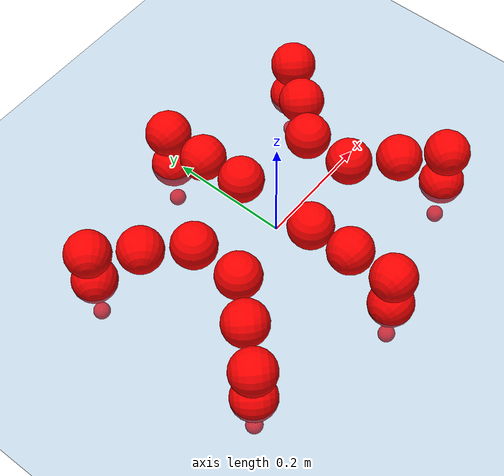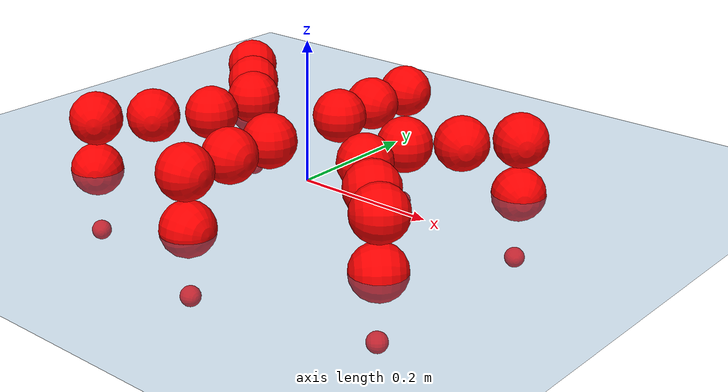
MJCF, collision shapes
<mujoco model="Golem">
  <compiler angle="radian" assetdir="assets" balanceinertia="true" inertiafromgeom="false"/>

  <option timestep="0.005" density="1.2" viscosity="2e-05"/>

  <size nkey="1"/>

  <visual>
    <quality shadowsize="8192"/>
    <map shadowclip="0.5"/>
  </visual>

  <default>
    <default class="/">
      <joint armature="0.01" damping="0.01" frictionloss="0.01"/>
      <geom contype="0" conaffinity="0" group="1" solref="-1000 -80"/>
      <site size="0.01 0.005 0.005" group="5"/>
      <general forcelimited="true" biastype="affine" gainprm="25" biasprm="0 -25 -0.5"/>
      <default class="visual">
        <geom type="mesh" group="2"/>
      </default>
      <default class="collision">
        <geom group="3"/>
      </default>
      <default class="foot">
        <geom size="0.01 0 0" condim="6" group="4" priority="1" solimp="0.015 1 0.01"/>
      </default>
      <default class="reward_collision_sphere">
        <geom group="5" rgba="1 0 0 1"/>
      </default>
    </default>
  </default>

  <asset>
    <texture type="skybox" colorspace="auto" name="//unnamed_texture_0" builtin="gradient" rgb1="0.95 0.95 0.95" rgb2="0.95 0.95 0.95" width="100" height="600"/>
    <texture type="2d" colorspace="auto" name="texplane" builtin="checker" rgb1="0.345 0.575 0.748" rgb2="0.345 0.575 0.748" markrgb="1 1 1" width="512" height="512"/>
    <material name="MatPlane" class="/" texture="texplane" texuniform="true" texrepeat="2 2" specular="0.9"/>
    <mesh name="body" class="/" file="body.stl" scale="0.001 0.001 0.001"/>
    <mesh name="coxa" class="/" file="coxa.stl" scale="0.001 0.001 0.001"/>
    <mesh name="femur" class="/" file="femur.stl" scale="0.001 0.001 0.001"/>
    <mesh name="tibia" class="/" file="tibia.stl" scale="0.001 0.001 0.001"/>
    <mesh name="tarsus" class="/" file="tarsus.stl" scale="0.001 0.001 0.001"/>
  </asset>

  <worldbody>
    <geom name="floor" class="/" size="100 100 0.125" type="plane" group="0" material="MatPlane"/>
    <light name="toplight_shadow" class="/" pos="0 0 5" dir="0.0990148 0.0990148 -0.990148" type="directional" ambient="0.04 0.04 0.04" diffuse="0.55 0.55 0.55" specular="0.12 0.12 0.12"/>
    <light name="toplight_fill" class="/" pos="0 0 5" dir="0.0990148 0.0990148 -0.990148" type="directional" castshadow="false" ambient="0.04 0.04 0.04" diffuse="0.3 0.3 0.3" specular="0.08 0.08 0.08"/>
    <body name="trunk" pos="-0.00264673 0.000307457 -0.00101347" quat="1 -0.000263718 -0.000446572 -0.000379455">
      <inertial pos="0.000472132 0.000404266 -0.000725288" quat="0.999901 0.00621159 0.00277642 0.0123194" mass="2.97975" diaginertia="0.00528199 0.00232329 0.0231812"/>
      <joint name="//unnamed_joint_0" type="free"/>
      <geom name="//unnamed_geom_1" class="/" pos="0 0 0.0759461" quat="1 0 0 0" type="mesh" rgba="0.9 0.9 0.9 1" mesh="body"/>
      <site name="imu" class="/" pos="0.115768 0.0109798 0.105046" size="0.00938355"/>
      <camera name="track" class="/" pos="0 -1.4925 0" quat="0.707107 0.707107 0 0" mode="trackcom"/>
      <camera name="ego_camera" class="/" pos="0.11468 0 0.118666" quat="-0.5 -0.5 0.5 0.5"/>
      <body name="coxa_RR" pos="-0.15863 -0.0600702 0.0780909" quat="0.382609 0.000268677 0.000954928 -0.92391">
        <inertial pos="0.00282506 0.00256301 0.00283477" quat="0.999997 0.00110856 0.00115679 -0.00169866" mass="0.170636" diaginertia="0.0054362 0.00242267 0.0235448"/>
        <joint name="coxa_joint_RR" class="/" pos="0 0 0" axis="-0.00116072 -0.000764852 -0.999999" range="-3.13558 3.12806" armature="0.00973293" damping="0.016011" frictionloss="0.00913856"/>
        <geom name="//unnamed_geom_2" class="/" type="mesh" rgba="0.2 0.2 0.2 1" mesh="coxa"/>
        <geom name="//unnamed_geom_3" class="reward_collision_sphere" size="0.0375342" pos="-0.0264646 0 0"/>
        <body name="femur_RR" pos="0.0550701 0.00216997 -0.00136383" quat="0.500039 -0.49938 0.501294 0.499285">
          <inertial pos="0.00169322 0.00229992 0.000222777" quat="0.99996 -0.00676956 0.0018312 -0.00562839" mass="0.162203" diaginertia="0.00531058 0.00229249 0.0231995"/>
          <joint name="femur_joint_RR" class="/" pos="0 0 0" axis="0.00156308 0.00117183 -0.999998" stiffness="0.00984899" range="-3.08271 3.08236" armature="0.00946176" damping="0.0225336" frictionloss="0.0105193"/>
          <geom name="//unnamed_geom_4" class="/" type="mesh" rgba="0.9 0.9 0.9 1" mesh="femur"/>
          <geom name="//unnamed_geom_5" class="reward_collision_sphere" size="0.0375342"/>
          <body name="tibia_RR" pos="0.00135781 -0.0794611 0.00340743" quat="-0.000367934 0.999999 -0.00069706 -0.00124435">
            <inertial pos="-0.0026411 -0.000837821 -0.00105526" quat="0.999923 0.0104536 -0.00593357 -0.00296077" mass="0.166152" diaginertia="0.00549626 0.00234239 0.024251"/>
            <joint name="tibia_joint_RR" class="/" pos="0 0 0" axis="-0.00955936 0.00710254 0.999929" stiffness="0.009187" range="-3.1856 3.14856" armature="0.00916157" damping="0.00264963" frictionloss="0.00919126"/>
            <geom name="//unnamed_geom_6" class="/" type="mesh" rgba="0.2 0.2 0.2 1" mesh="tibia"/>
            <geom name="//unnamed_geom_7" class="reward_collision_sphere" size="0.0375342"/>
            <body name="tarsus_RR" pos="0.0761175 0.00248937 -0.000502875" quat="0.999999 -0.000180994 -0.00133426 4.34546e-05">
              <inertial pos="0.0517006 0.00133798 -0.00225858" quat="0.499683 0.500136 0.501033 0.499146" mass="0.168767" diaginertia="0.0054332 0.0023887 0.0236781"/>
              <joint name="tarsus_joint_RR" class="/" pos="0 0 0" axis="0.000289383 0.0109546 0.99994" range="-3.1329 3.13708" armature="0.00914141" damping="0.0364449" frictionloss="0.00825433"/>
              <geom name="//unnamed_geom_8" class="/" type="mesh" rgba="0.9 0.9 0.9 1" mesh="tarsus"/>
              <geom name="foot_1" class="foot" size="0.00927683" pos="0.0988013 0 0" quat="0 -0.707107 0 0.707107"/>
              <geom name="//unnamed_geom_10" class="reward_collision_sphere" size="0.0375342"/>
              <geom name="//unnamed_geom_11" class="reward_collision_sphere" size="0.0140753" pos="0.0948316 0 0"/>
              <site name="foot_1" class="foot" pos="0.0988013 0 0" quat="0 -0.707107 0 0.707107" size="0.00938355"/>
            </body>
          </body>
        </body>
      </body>
      <body name="coxa_RM" pos="-0.00177866 -0.0972986 0.0785759" quat="0.706729 0.000686826 -0.000186108 -0.707484">
        <inertial pos="-0.00173897 -0.000923488 -0.000399939" quat="0.999998 0.00200318 -0.000754135 0.000417316" mass="0.169504" diaginertia="0.00526771 0.0024397 0.0237853"/>
        <joint name="coxa_joint_RM" class="/" pos="0 0 0" axis="-0.00367079 0.000148122 -0.999993" range="-3.09032 3.12748" armature="0.0107152" damping="0.00898284" frictionloss="0.00951794"/>
        <geom name="//unnamed_geom_12" class="/" type="mesh" rgba="0.2 0.2 0.2 1" mesh="coxa"/>
        <geom name="//unnamed_geom_13" class="reward_collision_sphere" size="0.0375342" pos="-0.0264646 0 0"/>
        <body name="femur_RM" pos="0.0489772 0.00066849 0.00132349" quat="0.500961 -0.500478 0.499413 0.499146">
          <inertial pos="-0.000759079 -0.00299188 0.00217713" quat="0.999989 0.000319309 -0.00410977 0.00210963" mass="0.169613" diaginertia="0.00513505 0.00227375 0.0231556"/>
          <joint name="femur_joint_RM" class="/" pos="0 0 0" axis="0.00166747 -0.000909505 -0.999998" stiffness="0.000999576" range="-3.15466 3.11373" armature="0.00875266" damping="0.0176363" frictionloss="0.00935807"/>
          <geom name="//unnamed_geom_14" class="/" type="mesh" rgba="0.9 0.9 0.9 1" mesh="femur"/>
          <geom name="//unnamed_geom_15" class="reward_collision_sphere" size="0.0375342"/>
          <body name="tibia_RM" pos="-0.00133562 -0.0794868 0.000989988" quat="-0.000102745 1 -9.75013e-05 -0.000241461">
            <inertial pos="-0.00275205 -0.000450147 -0.00110326" quat="0.99992 0.00138593 0.00881741 0.00901573" mass="0.166308" diaginertia="0.0054541 0.00228844 0.0235942"/>
            <joint name="tibia_joint_RM" class="/" pos="0 0 0" axis="-0.00537821 0.00506213 0.999973" range="-3.13894 3.14226" armature="0.00959635" damping="0" frictionloss="0.00883594"/>
            <geom name="//unnamed_geom_16" class="/" type="mesh" rgba="0.2 0.2 0.2 1" mesh="tibia"/>
            <geom name="//unnamed_geom_17" class="reward_collision_sphere" size="0.0375342"/>
            <body name="tarsus_RM" pos="0.0764045 0.000333648 -0.00221039" quat="1 -0.00026669 0.000780166 -8.55535e-05">
              <inertial pos="0.0532561 -0.000719263 2.57562e-05" quat="0.494586 0.495561 0.504038 0.505717" mass="0.163919" diaginertia="0.00540927 0.00229512 0.0250143"/>
              <joint name="tarsus_joint_RM" class="/" pos="0 0 0" axis="0.00827381 0.00751719 0.999938" range="-3.19425 3.15204" armature="0.00797327" damping="0.00804509" frictionloss="0.00907823"/>
              <geom name="//unnamed_geom_18" class="/" type="mesh" rgba="0.9 0.9 0.9 1" mesh="tarsus"/>
              <geom name="foot_2" class="foot" size="0.00993032" pos="0.0988013 0 0" quat="0 -0.707107 0 0.707107"/>
              <geom name="//unnamed_geom_20" class="reward_collision_sphere" size="0.0375342"/>
              <geom name="//unnamed_geom_21" class="reward_collision_sphere" size="0.0140753" pos="0.0948316 0 0"/>
              <site name="foot_2" class="foot" pos="0.0988013 0 0" quat="0 -0.707107 0 0.707107" size="0.00938355"/>
            </body>
          </body>
        </body>
      </body>
      <body name="coxa_RF" pos="0.155594 -0.059827 0.0760735" quat="0.924064 1.45024e-05 0.00073267 -0.382238">
        <inertial pos="0.0016368 0.00143374 6.99202e-05" quat="0.999993 0.00304791 0.00167228 0.00138564" mass="0.166004" diaginertia="0.00532315 0.00224647 0.0235787"/>
        <joint name="coxa_joint_RF" class="/" pos="0 0 0" axis="-0.0148624 0.00902614 -0.999849" stiffness="0.00764483" range="-3.08481 3.11072" armature="0.0082465" damping="0.0298864" frictionloss="0.00909542"/>
        <geom name="//unnamed_geom_22" class="/" type="mesh" rgba="0.2 0.2 0.2 1" mesh="coxa"/>
        <geom name="//unnamed_geom_23" class="reward_collision_sphere" size="0.0375342" pos="-0.0264646 0 0"/>
        <body name="femur_RF" pos="0.0550778 0.00020424 -0.00237912" quat="0.500129 -0.499536 0.499661 0.500673">
          <inertial pos="-0.000282972 -0.00299428 0.00101816" quat="0.999944 0.00721253 0.00747678 -0.0019043" mass="0.168757" diaginertia="0.00526104 0.00228505 0.022799"/>
          <joint name="femur_joint_RF" class="/" pos="0 0 0" axis="0.00357385 -0.000402996 -0.999994" range="-3.12292 3.08104" armature="0.0097464" damping="0.00466137" frictionloss="0.0105762"/>
          <geom name="//unnamed_geom_24" class="/" type="mesh" rgba="0.9 0.9 0.9 1" mesh="femur"/>
          <geom name="//unnamed_geom_25" class="reward_collision_sphere" size="0.0375342"/>
          <body name="tibia_RF" pos="-0.00188539 -0.0779903 4.04376e-05" quat="0.000434803 0.999999 0.000258983 0.00118053">
            <inertial pos="0.000886441 0.000230221 0.00022978" quat="0.999925 -0.0108558 -0.002957 -0.00477296" mass="0.159512" diaginertia="0.00516823 0.00223487 0.0229483"/>
            <joint name="tibia_joint_RF" class="/" pos="0 0 0" axis="-0.000542082 0.000361356 1" range="-3.13493 3.16778" armature="0.00915007" damping="0" frictionloss="0.0103255"/>
            <geom name="//unnamed_geom_26" class="/" type="mesh" rgba="0.2 0.2 0.2 1" mesh="tibia"/>
            <geom name="//unnamed_geom_27" class="reward_collision_sphere" size="0.0375342"/>
            <body name="tarsus_RF" pos="0.0763141 -0.000471711 -0.000104101" quat="1 0.000123126 6.4748e-05 0.000366517">
              <inertial pos="0.052539 -4.44014e-05 -0.000792602" quat="0.489163 0.498921 0.503587 0.508132" mass="0.15949" diaginertia="0.005176 0.00226147 0.0221615"/>
              <joint name="tarsus_joint_RF" class="/" pos="0 0 0" axis="-0.00908419 -0.00191458 0.999957" stiffness="0.00087098" range="-3.13653 3.16054" armature="0.00924425" damping="0.00697083" frictionloss="0.0107137"/>
              <geom name="//unnamed_geom_28" class="/" type="mesh" rgba="0.9 0.9 0.9 1" mesh="tarsus"/>
              <geom name="foot_3" class="foot" size="0.0100149" pos="0.0988013 0 0" quat="0 -0.707107 0 0.707107"/>
              <geom name="//unnamed_geom_30" class="reward_collision_sphere" size="0.0375342"/>
              <geom name="//unnamed_geom_31" class="reward_collision_sphere" size="0.0140753" pos="0.0948316 0 0"/>
              <site name="foot_3" class="foot" pos="0.0988013 0 0" quat="0 -0.707107 0 0.707107" size="0.00938355"/>
            </body>
          </body>
        </body>
      </body>
      <body name="coxa_LR" pos="-0.159992 0.0639807 0.0788138" quat="0.382021 -0.000292341 0.000351962 0.924153">
        <inertial pos="-3.15434e-05 0.000587715 0.00233614" quat="0.999997 -7.80888e-05 0.0025549 -0.000390629" mass="0.158524" diaginertia="0.00516224 0.00228326 0.0231281"/>
        <joint name="coxa_joint_LR" class="/" pos="0 0 0" axis="-0.00924517 -0.005629 -0.999941" range="-3.0942 3.13544" armature="0.00814706" damping="0.0208393" frictionloss="0.00929849"/>
        <geom name="//unnamed_geom_32" class="/" type="mesh" rgba="0.2 0.2 0.2 1" mesh="coxa"/>
        <geom name="//unnamed_geom_33" class="reward_collision_sphere" size="0.0375342" pos="-0.0264646 0 0"/>
        <body name="femur_LR" pos="0.0545936 -0.00154437 -0.000738598" quat="0.500683 -0.499697 0.499091 0.500527">
          <inertial pos="-6.2388e-05 0.000499918 0.00255945" quat="0.999927 -0.0119333 -0.00147154 -0.00143175" mass="0.169503" diaginertia="0.00552217 0.00223139 0.0243473"/>
          <joint name="femur_joint_LR" class="/" pos="0 0 0" axis="-0.00104449 0.00133998 0.999999" range="-3.17499 3.17546" armature="0.00927889" damping="0.00134092" frictionloss="0.00862616"/>
          <geom name="//unnamed_geom_34" class="/" type="mesh" rgba="0.9 0.9 0.9 1" mesh="femur"/>
          <geom name="//unnamed_geom_35" class="reward_collision_sphere" size="0.0375342"/>
          <body name="tibia_LR" pos="-0.00128884 -0.0797373 -0.000825579" quat="7.01176e-05 1 0.000614815 0.000220194">
            <inertial pos="-0.000691645 -0.00165696 -0.00140732" quat="0.999999 -0.00073809 -0.000615592 -0.00122447" mass="0.165451" diaginertia="0.00535167 0.0023829 0.0228027"/>
            <joint name="tibia_joint_LR" class="/" pos="0 0 0" axis="3.1782e-05 -0.000637476 -1" range="-3.11001 3.18813" armature="0.0080255" damping="0.0100792" frictionloss="0.00837343"/>
            <geom name="//unnamed_geom_36" class="/" type="mesh" rgba="0.2 0.2 0.2 1" mesh="tibia"/>
            <geom name="//unnamed_geom_37" class="reward_collision_sphere" size="0.0375342"/>
            <body name="tarsus_LR" pos="0.0755522 -0.00129923 0.0016378" quat="1 -6.79287e-05 4.50168e-05 2.17555e-05">
              <inertial pos="0.0537998 0.00109538 0.00155618" quat="0.497295 0.498139 0.503734 0.500806" mass="0.163375" diaginertia="0.00526964 0.00244892 0.0240101"/>
              <joint name="tarsus_joint_LR" class="/" pos="0 0 0" axis="-0.00266347 0.00666577 -0.999974" stiffness="0.0122977" range="-3.13809 3.09116" armature="0.00922214" damping="0.0291718" frictionloss="0.0105654"/>
              <geom name="//unnamed_geom_38" class="/" type="mesh" rgba="0.9 0.9 0.9 1" mesh="tarsus"/>
              <geom name="foot_4" class="foot" size="0.0100556" pos="0.0988013 0 0" quat="0.707107 0 -0.707107 0"/>
              <geom name="//unnamed_geom_40" class="reward_collision_sphere" size="0.0375342"/>
              <geom name="//unnamed_geom_41" class="reward_collision_sphere" size="0.0140753" pos="0.0948316 0 0"/>
              <site name="foot_4" class="foot" pos="0.0988013 0 0" quat="0.707107 0 -0.707107 0" size="0.00938355"/>
            </body>
          </body>
        </body>
      </body>
      <body name="coxa_LM" pos="0.000903411 0.0962222 0.0770837" quat="0.706328 0.000658393 0.000449379 0.707884">
        <inertial pos="0.00172198 0.000874825 0.00211777" quat="1 0.000186958 0.000203816 -0.000192263" mass="0.164877" diaginertia="0.00543318 0.00230717 0.023421"/>
        <joint name="coxa_joint_LM" class="/" pos="0 0 0" axis="0.00388195 -0.00345669 -0.999986" range="-3.08296 3.08066" armature="0.0104157" damping="0.0116156" frictionloss="0.0107159"/>
        <geom name="//unnamed_geom_42" class="/" type="mesh" rgba="0.2 0.2 0.2 1" mesh="coxa"/>
        <geom name="//unnamed_geom_43" class="reward_collision_sphere" size="0.0375342" pos="-0.0264646 0 0"/>
        <body name="femur_LM" pos="0.0500296 0.00291633 -0.00231742" quat="0.499592 -0.499948 0.500023 0.500437">
          <inertial pos="-0.00271188 0.00265743 -0.00027287" quat="0.999923 0.0119356 0.00272514 0.00191021" mass="0.16801" diaginertia="0.00559475 0.00226916 0.0242045"/>
          <joint name="femur_joint_LM" class="/" pos="0 0 0" axis="0.00795005 0.00565794 0.999952" stiffness="0.0118622" range="-3.09202 3.14228" armature="0.00891622" damping="0" frictionloss="0.0088962"/>
          <geom name="//unnamed_geom_44" class="/" type="mesh" rgba="0.9 0.9 0.9 1" mesh="femur"/>
          <geom name="//unnamed_geom_45" class="reward_collision_sphere" size="0.0375342"/>
          <body name="tibia_LM" pos="-0.000417837 -0.0764551 -0.00237471" quat="-3.48914e-05 1 -0.000195254 -0.000261479">
            <inertial pos="0.00196704 0.00173738 0.00284702" quat="0.999949 0.00827479 0.00149888 0.00563873" mass="0.163986" diaginertia="0.00517355 0.0022864 0.0229042"/>
            <joint name="tibia_joint_LM" class="/" pos="0 0 0" axis="-0.0034849 0.014719 -0.999886" range="-3.18136 3.19094" armature="0.00928897" damping="0" frictionloss="0.00805369"/>
            <geom name="//unnamed_geom_46" class="/" type="mesh" rgba="0.2 0.2 0.2 1" mesh="tibia"/>
            <geom name="//unnamed_geom_47" class="reward_collision_sphere" size="0.0375342"/>
            <body name="tarsus_LM" pos="0.0800019 -0.0038003 0.00165764" quat="1 -0.000384548 -1.65629e-05 -5.51271e-05">
              <inertial pos="0.0520285 0.000210157 0.000316361" quat="0.492157 0.50396 0.509377 0.494308" mass="0.170843" diaginertia="0.00565125 0.00234505 0.0234768"/>
              <joint name="tarsus_joint_LM" class="/" pos="0 0 0" axis="-0.0124894 0.00251478 -0.999919" stiffness="0.00786273" range="-3.13674 3.08389" armature="0.00977895" damping="0.0130391" frictionloss="0.00931422"/>
              <geom name="//unnamed_geom_48" class="/" type="mesh" rgba="0.9 0.9 0.9 1" mesh="tarsus"/>
              <geom name="foot_5" class="foot" size="0.0102696" pos="0.0988013 0 0" quat="0.707107 0 -0.707107 0"/>
              <geom name="//unnamed_geom_50" class="reward_collision_sphere" size="0.0375342"/>
              <geom name="//unnamed_geom_51" class="reward_collision_sphere" size="0.0140753" pos="0.0948316 0 0"/>
              <site name="foot_5" class="foot" pos="0.0988013 0 0" quat="0.707107 0 -0.707107 0" size="0.00938355"/>
            </body>
          </body>
        </body>
      </body>
      <body name="coxa_LF" pos="0.155699 0.0604764 0.0763016" quat="0.923807 -0.000139178 -0.000126965 0.382857">
        <inertial pos="0.000746434 0.00119145 0.000171252" quat="1 0.000188278 -0.000184951 -0.000643598" mass="0.161814" diaginertia="0.00518904 0.00232199 0.0235423"/>
        <joint name="coxa_joint_LF" class="/" pos="0 0 0" axis="0.00422457 0.000595439 -0.999991" range="-3.16014 3.08597" armature="0.0101656" damping="0.0123744" frictionloss="0.00953308"/>
        <geom name="//unnamed_geom_52" class="/" type="mesh" rgba="0.2 0.2 0.2 1" mesh="coxa"/>
        <geom name="//unnamed_geom_53" class="reward_collision_sphere" size="0.0375342" pos="-0.0264646 0 0"/>
        <body name="femur_LF" pos="0.049753 0.000894333 -0.000686051" quat="0.500017 -0.500106 0.49924 0.500636">
          <inertial pos="-0.00212814 0.00241799 -0.00151686" quat="0.999993 -0.00271377 -0.00040397 -0.0026111" mass="0.164062" diaginertia="0.00519843 0.00215751 0.0225318"/>
          <joint name="femur_joint_LF" class="/" pos="0 0 0" axis="-0.00744118 0.00948205 0.999927" stiffness="0.01031" range="-3.14351 3.10464" armature="0.00826063" damping="0" frictionloss="0.00969221"/>
          <geom name="//unnamed_geom_54" class="/" type="mesh" rgba="0.9 0.9 0.9 1" mesh="femur"/>
          <geom name="//unnamed_geom_55" class="reward_collision_sphere" size="0.0375342"/>
          <body name="tibia_LF" pos="-0.00110319 -0.0798427 0.0039866" quat="8.50798e-05 1 -0.00059274 -0.000105897">
            <inertial pos="0.00186352 0.00292434 -0.000143883" quat="0.999966 -0.00257645 0.00430664 0.00652918" mass="0.163921" diaginertia="0.00531666 0.00236773 0.0242463"/>
            <joint name="tibia_joint_LF" class="/" pos="0 0 0" axis="0.00348581 0.0021572 -0.999992" range="-3.15039 3.08272" armature="0.00918169" damping="0" frictionloss="0.00939319"/>
            <geom name="//unnamed_geom_56" class="/" type="mesh" rgba="0.2 0.2 0.2 1" mesh="tibia"/>
            <geom name="//unnamed_geom_57" class="reward_collision_sphere" size="0.0375342"/>
            <body name="tarsus_LF" pos="0.0780717 0.00182041 -0.00134091" quat="1 -4.82383e-05 -0.000116357 0.000276461">
              <inertial pos="0.055425 -0.00171071 -0.00116386" quat="0.50333 0.499632 0.500692 0.49632" mass="0.15803" diaginertia="0.00508 0.00224696 0.0227754"/>
              <joint name="tarsus_joint_LF" class="/" pos="0 0 0" axis="-0.00900113 -0.00253454 -0.999956" range="-3.0984 3.12476" armature="0.00913951" damping="0.0129111" frictionloss="0.00964381"/>
              <geom name="//unnamed_geom_58" class="/" type="mesh" rgba="0.9 0.9 0.9 1" mesh="tarsus"/>
              <geom name="foot_6" class="foot" size="0.00848469" pos="0.0988013 0 0" quat="0.707107 0 -0.707107 0"/>
              <geom name="//unnamed_geom_60" class="reward_collision_sphere" size="0.0375342"/>
              <geom name="//unnamed_geom_61" class="reward_collision_sphere" size="0.0140753" pos="0.0948316 0 0"/>
              <site name="foot_6" class="foot" pos="0.0988013 0 0" quat="0.707107 0 -0.707107 0" size="0.00938355"/>
            </body>
          </body>
        </body>
      </body>
    </body>
  </worldbody>

  <contact>
    <pair class="/" geom1="floor" geom2="foot_1" name="//unnamed_contact_0"/>
    <pair class="/" geom1="floor" geom2="foot_2" name="//unnamed_contact_1"/>
    <pair class="/" geom1="floor" geom2="foot_3" name="//unnamed_contact_2"/>
    <pair class="/" geom1="floor" geom2="foot_4" name="//unnamed_contact_3"/>
    <pair class="/" geom1="floor" geom2="foot_5" name="//unnamed_contact_4"/>
    <pair class="/" geom1="floor" geom2="foot_6" name="//unnamed_contact_5"/>
  </contact>

  <actuator>
    <general name="coxa_joint_RR" class="/" joint="coxa_joint_RR" forcerange="-6.61575 6.61575" gainprm="23.7768" biasprm="0 -23.7768 -0.448618"/>
    <general name="femur_joint_RR" class="/" joint="femur_joint_RR" forcerange="-6.79591 6.79591" gainprm="23.7768" biasprm="0 -23.7768 -0.448618"/>
    <general name="tibia_joint_RR" class="/" joint="tibia_joint_RR" forcerange="-6.61148 6.61148" gainprm="23.7768" biasprm="0 -23.7768 -0.448618"/>
    <general name="tarsus_joint_RR" class="/" joint="tarsus_joint_RR" forcerange="-6.51544 6.51544" gainprm="23.7768" biasprm="0 -23.7768 -0.448618"/>
    <general name="coxa_joint_RM" class="/" joint="coxa_joint_RM" forcerange="-6.42828 6.42828" gainprm="23.7768" biasprm="0 -23.7768 -0.448618"/>
    <general name="femur_joint_RM" class="/" joint="femur_joint_RM" forcerange="-6.21679 6.21679" gainprm="23.7768" biasprm="0 -23.7768 -0.448618"/>
    <general name="tibia_joint_RM" class="/" joint="tibia_joint_RM" forcerange="-6.84079 6.84079" gainprm="23.7768" biasprm="0 -23.7768 -0.448618"/>
    <general name="tarsus_joint_RM" class="/" joint="tarsus_joint_RM" forcerange="-7.38138 7.38138" gainprm="23.7768" biasprm="0 -23.7768 -0.448618"/>
    <general name="coxa_joint_RF" class="/" joint="coxa_joint_RF" forcerange="-6.26628 6.26628" gainprm="23.7768" biasprm="0 -23.7768 -0.448618"/>
    <general name="femur_joint_RF" class="/" joint="femur_joint_RF" forcerange="-6.18225 6.18225" gainprm="23.7768" biasprm="0 -23.7768 -0.448618"/>
    <general name="tibia_joint_RF" class="/" joint="tibia_joint_RF" forcerange="-7.54404 7.54404" gainprm="23.7768" biasprm="0 -23.7768 -0.448618"/>
    <general name="tarsus_joint_RF" class="/" joint="tarsus_joint_RF" forcerange="-7.50037 7.50037" gainprm="23.7768" biasprm="0 -23.7768 -0.448618"/>
    <general name="coxa_joint_LR" class="/" joint="coxa_joint_LR" forcerange="-7.04659 7.04659" gainprm="23.7768" biasprm="0 -23.7768 -0.448618"/>
    <general name="femur_joint_LR" class="/" joint="femur_joint_LR" forcerange="-6.13291 6.13291" gainprm="23.7768" biasprm="0 -23.7768 -0.448618"/>
    <general name="tibia_joint_LR" class="/" joint="tibia_joint_LR" forcerange="-6.49347 6.49347" gainprm="23.7768" biasprm="0 -23.7768 -0.448618"/>
    <general name="tarsus_joint_LR" class="/" joint="tarsus_joint_LR" forcerange="-7.09943 7.09943" gainprm="23.7768" biasprm="0 -23.7768 -0.448618"/>
    <general name="coxa_joint_LM" class="/" joint="coxa_joint_LM" forcerange="-7.55767 7.55767" gainprm="23.7768" biasprm="0 -23.7768 -0.448618"/>
    <general name="femur_joint_LM" class="/" joint="femur_joint_LM" forcerange="-6.95864 6.95864" gainprm="23.7768" biasprm="0 -23.7768 -0.448618"/>
    <general name="tibia_joint_LM" class="/" joint="tibia_joint_LM" forcerange="-6.84892 6.84892" gainprm="23.7768" biasprm="0 -23.7768 -0.448618"/>
    <general name="tarsus_joint_LM" class="/" joint="tarsus_joint_LM" forcerange="-6.23815 6.23815" gainprm="23.7768" biasprm="0 -23.7768 -0.448618"/>
    <general name="coxa_joint_LF" class="/" joint="coxa_joint_LF" forcerange="-6.7766 6.7766" gainprm="23.7768" biasprm="0 -23.7768 -0.448618"/>
    <general name="femur_joint_LF" class="/" joint="femur_joint_LF" forcerange="-6.86988 6.86988" gainprm="23.7768" biasprm="0 -23.7768 -0.448618"/>
    <general name="tibia_joint_LF" class="/" joint="tibia_joint_LF" forcerange="-7.37455 7.37455" gainprm="23.7768" biasprm="0 -23.7768 -0.448618"/>
    <general name="tarsus_joint_LF" class="/" joint="tarsus_joint_LF" forcerange="-7.08743 7.08743" gainprm="23.7768" biasprm="0 -23.7768 -0.448618"/>
  </actuator>

  <sensor>
    <gyro site="imu" name="imu_angular_velocity"/>
    <velocimeter site="imu" name="imu_linear_velocity"/>
    <framelinvel objtype="site" objname="foot_1" name="foot_1_global_linear_velocity"/>
    <framelinvel objtype="site" objname="foot_2" name="foot_2_global_linear_velocity"/>
    <framelinvel objtype="site" objname="foot_3" name="foot_3_global_linear_velocity"/>
    <framelinvel objtype="site" objname="foot_4" name="foot_4_global_linear_velocity"/>
    <framelinvel objtype="site" objname="foot_5" name="foot_5_global_linear_velocity"/>
    <framelinvel objtype="site" objname="foot_6" name="foot_6_global_linear_velocity"/>
  </sensor>

  <keyframe>
    <key name="home" qpos="0 0 0.1457 1 0 0 0 0 0 0 0 0 0 0 0 0 0 0 0 0 0 0 0 0 0 0 0 0 0 0 0"/>
  </keyframe>
</mujoco>
